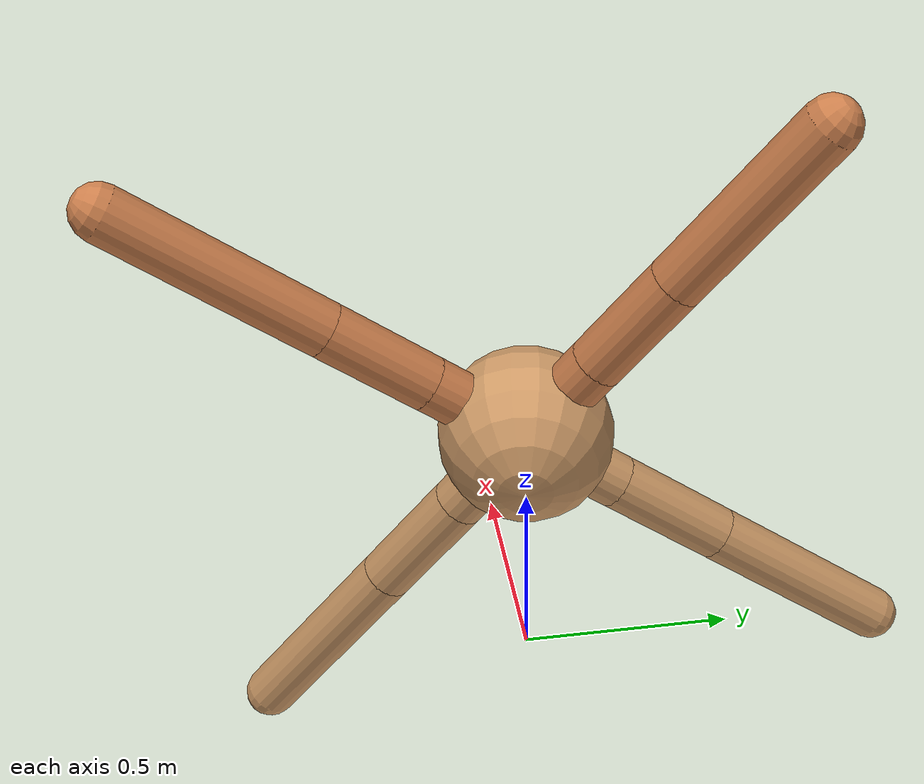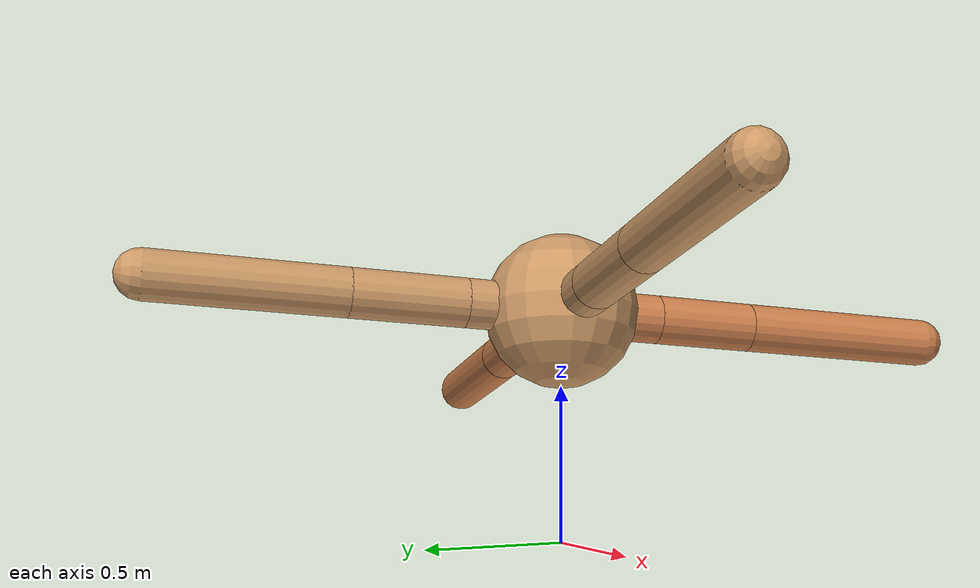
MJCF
<mujoco model="ant">
  <compiler angle="degree" coordinate="local" inertiafromgeom="true" />
  <option integrator="RK4" timestep="0.01" />
  <custom>
    <numeric data="0.0 0.0 0.55 1.0 0.0 0.0 0.0 0.0 1.0 0.0 -1.0 0.0 -1.0 0.0 1.0" name="init_qpos" />
  </custom>
  <default>
    <joint armature="1" damping="1" limited="true" />
    <geom conaffinity="0" condim="3" density="5.0" friction="1.5 0.1 0.1" margin="0.01" rgba="0.8 0.6 0.4 1" />
  </default>
  <worldbody>
    <body name="torso" pos="0 0 0.75">
      <geom name="torso_geom" pos="0 0 0" size="0.25" type="sphere" />

      <body name="front_left_leg" pos="0 0 0">
        <geom fromto="0.0 0.0 0.0 0.23166479785688723 0.23166479785688723 0.0" name="aux_1_geom" size="0.08" type="capsule" rgba=".8 .5 .3 1" />
        <body name="aux_1" pos="0.23166479785688723 0.23166479785688723 0.0">
          <joint axis="0 0 1" name="hip_1" pos="0.0 0.0 0.0" range="-40 40" type="hinge" />
          <geom fromto="0.0 0.0 0.0 0.24099091172866186 0.24099091172866186 0.0" name="left_leg_geom" size="0.08" type="capsule" rgba=".8 .5 .3 1" />
          <body pos="0.24099091172866186 0.24099091172866186 0.0" name="front_left_foot">
            <joint axis="-1 1 0" name="ankle_1" pos="0.0 0.0 0.0" range="30 100" type="hinge" />
            <geom fromto="0.0 0.0 0.0 0.42263906028637666 0.42263906028637666 0.0" name="left_ankle_geom" size="0.08" type="capsule" rgba=".8 .5 .3 1" />
          </body>
        </body>
      </body>
      <body name="front_right_leg" pos="0 0 0">
        <geom fromto="0.0 0.0 0.0 -0.22603981381786717 0.22603981381786717 0.0" name="aux_2_geom" size="0.08" type="capsule" />
        <body name="aux_2" pos="-0.22603981381786717 0.22603981381786717 0.0">
          <joint axis="0 0 1" name="hip_2" pos="0.0 0.0 0.0" range="-40 40" type="hinge" />
          <geom fromto="0.0 0.0 0.0 -0.2631751652589097 0.2631751652589097 0.0" name="right_leg_geom" size="0.08" type="capsule" />
          <body pos="-0.2631751652589097 0.2631751652589097 0.0" name="front_right_foot">
            <joint axis="1 1 0" name="ankle_2" pos="0.0 0.0 0.0" range="-100 -30" type="hinge" />
            <geom fromto="0.0 0.0 0.0 -0.4388391168788257 0.4388391168788257 0.0" name="right_ankle_geom" size="0.08" type="capsule" />
          </body>
        </body>
      </body>
      <body name="left_back_leg" pos="0 0 0">
        <geom fromto="0.0 0.0 0.0 -0.2371447862076418 -0.2371447862076418 0.0" name="aux_3_geom" size="0.08" type="capsule" />
        <body name="aux_3" pos="-0.2371447862076418 -0.2371447862076418 0.0">
          <joint axis="0 0 1" name="hip_3" pos="0.0 0.0 0.0" range="-40 40" type="hinge" />
          <geom fromto="0.0 0.0 0.0 -0.2748311683974632 -0.2748311683974632 0.0" name="back_leg_geom" size="0.08" type="capsule" />
          <body pos="-0.2748311683974632 -0.2748311683974632 0.0" name="left_back_foot">
            <joint axis="-1 1 0" name="ankle_3" pos="0.0 0.0 0.0" range="-100 -30" type="hinge" />
            <geom fromto="0.0 0.0 0.0 -0.49394366906778686 -0.49394366906778686 0.0" name="third_ankle_geom" size="0.08" type="capsule" />
          </body>
        </body>
      </body>
      <body name="right_back_leg" pos="0 0 0">
        <geom fromto="0.0 0.0 0.0 0.23208512718700433 -0.23208512718700433 0.0" name="aux_4_geom" size="0.08" type="capsule" rgba=".8 .5 .3 1" />
        <body name="aux_4" pos="0.23208512718700433 -0.23208512718700433 0.0">
          <joint axis="0 0 1" name="hip_4" pos="0.0 0.0 0.0" range="-40 40" type="hinge" />
          <geom fromto="0.0 0.0 0.0 0.23296904651469552 -0.23296904651469552 0.0" name="rightback_leg_geom" size="0.08" type="capsule" rgba=".8 .5 .3 1" />
          <body pos="0.23296904651469552 -0.23296904651469552 0.0" name="right_back_foot">
            <joint axis="1 1 0" name="ankle_4" pos="0.0 0.0 0.0" range="30 100" type="hinge" />
            <geom fromto="0.0 0.0 0.0 0.4683541736616926 -0.4683541736616926 0.0" name="fourth_ankle_geom" size="0.08" type="capsule" rgba=".8 .5 .3 1" />
          </body>
        </body>
      </body>
    </body>
  </worldbody>
  <actuator>
    <motor ctrllimited="true" ctrlrange="-1.0 1.0" joint="hip_4" gear="150" />
    <motor ctrllimited="true" ctrlrange="-1.0 1.0" joint="ankle_4" gear="150" />
    <motor ctrllimited="true" ctrlrange="-1.0 1.0" joint="hip_1" gear="150" />
    <motor ctrllimited="true" ctrlrange="-1.0 1.0" joint="ankle_1" gear="150" />
    <motor ctrllimited="true" ctrlrange="-1.0 1.0" joint="hip_2" gear="150" />
    <motor ctrllimited="true" ctrlrange="-1.0 1.0" joint="ankle_2" gear="150" />
    <motor ctrllimited="true" ctrlrange="-1.0 1.0" joint="hip_3" gear="150" />
    <motor ctrllimited="true" ctrlrange="-1.0 1.0" joint="ankle_3" gear="150" />
  </actuator>
</mujoco>
